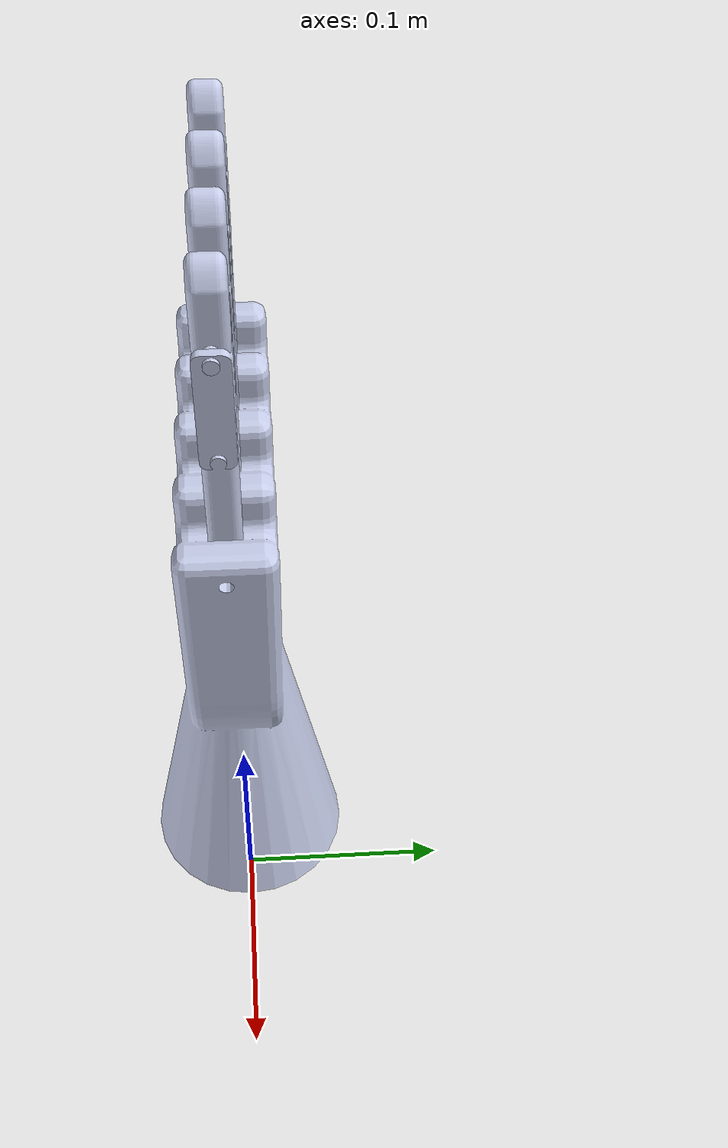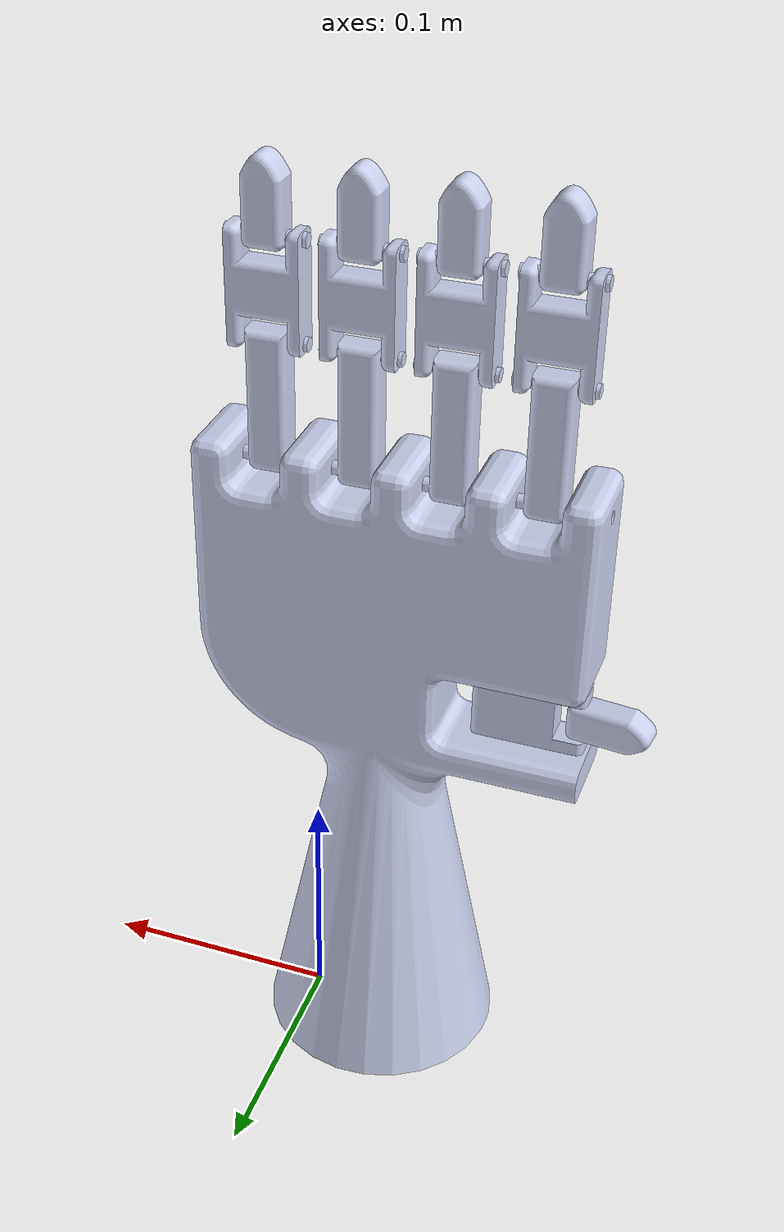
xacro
<?xml version="1.0"?>
<!-- Name your robot here -->
<robot name ="hand_bot" xmlns:xacro="http://wiki.ros.org/xacro">

<!-- Include your urdf files here -->
	<!-- Include Robot's urdf filepath -->
	<xacro:include filename="$(find hand_bot)/urdf/hand_bot.urdf"/>

<!--  Gazebo plugin for control here is already added for you -->
	<gazebo>
		<plugin name="gazebo_ros_control" filename="libgazebo_ros_control.so">
			<robotNamespace>/hand_bot</robotNamespace>
			<robotSimType>gazebo_ros_control/DefaultRobotHWSim</robotSimType>
			<legacyModeNS>true</legacyModeNS>
		</plugin>
	</gazebo>

</robot>

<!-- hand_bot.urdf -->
<robot
  name="hand_bot">
  <link name="dummy_link">
  <pos> 0 0 0 0 0 0 </pos>
  </link>
  <link
    name="base_link">
    <inertial>
      <origin
        xyz="-0.000703383166695187 1.43764231769206E-08 0.135753029524943"
        rpy="0 0 0" />
      <mass
        value="1.22844417241001" />
      <inertia
        ixx="0.00974290219860664"
        ixy="4.67625509381875E-10"
        ixz="0.000116051539380149"
        iyy="0.0108591675634407"
        iyz="-2.30309518757341E-10"
        izz="0.00173369930030835" />
    </inertial>
    <visual>
      <origin
        xyz="-0.03 0 0"
        rpy="0 0 0" />
      <geometry>
        <mesh
          filename="package://hand_bot/meshes/base_link.STL" />
      </geometry>
      <material
        name="">
        <color
          rgba="0.792156862745098 0.819607843137255 0.933333333333333 1" />
      </material>
    </visual>
    <collision>
      <origin
        xyz="0 0 0"
        rpy="0 0 0" />
      <geometry>
        <mesh
          filename="package://hand_bot/meshes/base_link.STL" />
      </geometry>
    </collision>
  </link>
  <joint name="dummy_link_joint" type="fixed">
  <parent link="dummy_link" />
  <child link="base_link" />
  </joint>
  <link
    name="thumb_lower">
    <inertial>
      <origin
        xyz="-0.0146717254719545 8.89402371266196E-05 0.034009"
        rpy="0 0 0" />
      <mass
        value="0.0141913225410551" />
      <inertia
        ixx="1.73105534034488E-06"
        ixy="1.06627125713534E-08"
        ixz="6.85563856724106E-22"
        iyy="3.48992902687173E-06"
        iyz="6.18276166292801E-23"
        izz="2.1183781527226E-06" />
    </inertial>
    <visual>
      <origin
        xyz="0 0 0"
        rpy="0 0 0" />
      <geometry>
        <mesh
          filename="package://hand_bot/meshes/thumb_lower.STL" />
      </geometry>
      <material
        name="">
        <color
          rgba="0.792156862745098 0.819607843137255 0.933333333333333 1" />
      </material>
    </visual>
    <collision>
      <origin
        xyz="0 0 0"
        rpy="0 0 0" />
      <geometry>
        <mesh
          filename="package://hand_bot/meshes/thumb_lower.STL" />
      </geometry>
    </collision>
  </link>
  <joint
    name="thumb_lower_joint"
    type="continuous">
    <origin
      xyz="-0.0697904945163514 0 0.144205013943543"
      rpy="0 0 0" />
    <parent
      link="base_link" />
    <child
      link="thumb_lower" />
    <axis
      xyz="0 0 1" />
  </joint>
  <link
    name="thumb_tip">
    <inertial>
      <origin
        xyz="-0.0108563056382985 0.00118581516066497 0.0154906157070203"
        rpy="0 0 0" />
      <mass
        value="0.00619150344597553" />
      <inertia
        ixx="2.34028685837351E-07"
        ixy="4.71131557974681E-08"
        ixz="-1.79641579500449E-09"
        iyy="6.60204648356565E-07"
        iyz="1.96731292775481E-10"
        izz="5.82123696956229E-07" />
    </inertial>
    <visual>
      <origin
        xyz="0 0 0"
        rpy="0 0 0" />
      <geometry>
        <mesh
          filename="package://hand_bot/meshes/thumb_tip.STL" />
      </geometry>
      <material
        name="">
        <color
          rgba="0.792156862745098 0.819607843137255 0.933333333333333 1" />
      </material>
    </visual>
    <collision>
      <origin
        xyz="0 0 0"
        rpy="0 0 0" />
      <geometry>
        <mesh
          filename="package://hand_bot/meshes/thumb_tip.STL" />
      </geometry>
    </collision>
  </link>
  <joint
    name="thumb_tip_joint"
    type="continuous">
    <origin
      xyz="-0.0387855356827445 0.000235118544666083 0.018499"
      rpy="0 0 0" />
    <parent
      link="thumb_lower" />
    <child
      link="thumb_tip" />
    <axis
      xyz="0 0 -1" />
  </joint>
  <link
    name="index_lower">
    <inertial>
      <origin
        xyz="0.0239088703056435 2.59556670254013E-09 0.015510005969888"
        rpy="0 0 0" />
      <mass
        value="0.0113540384293597" />
      <inertia
        ixx="4.43227782507445E-07"
        ixy="3.60087547476363E-13"
        ixz="1.28850285618581E-12"
        iyy="3.4209336950663E-06"
        iyz="2.74080827858553E-12"
        izz="3.24606186087563E-06" />
    </inertial>
    <visual>
      <origin
        xyz="0 0 0"
        rpy="0 0 0" />
      <geometry>
        <mesh
          filename="package://hand_bot/meshes/index_lower.STL" />
      </geometry>
      <material
        name="">
        <color
          rgba="0.792156862745098 0.819607843137255 0.933333333333333 1" />
      </material>
    </visual>
    <collision>
      <origin
        xyz="0 0 0"
        rpy="0 0 0" />
      <geometry>
        <mesh
          filename="package://hand_bot/meshes/index_lower.STL" />
      </geometry>
    </collision>
  </link>
  <joint
    name="index_lower_joint"
    type="continuous">
    <origin
      xyz="-0.0737440061993371 0 0.267773316384999"
      rpy="0 -1.5707963267949 0" />
    <parent
      link="base_link" />
    <child
      link="index_lower" />
    <axis
      xyz="0 0 -1" />
  </joint>
  <link
    name="index_middle">
    <inertial>
      <origin
        xyz="0.0193931241612039 6.93889390390723E-18 -0.0909720143523135"
        rpy="0 0 0" />
      <mass
        value="0.0099754284930005" />
      <inertia
        ixx="9.63331774115533E-07"
        ixy="-4.54052082283278E-13"
        ixz="1.65184323422484E-13"
        iyy="1.77529238382157E-06"
        iyz="-3.90739595474209E-23"
        izz="1.07733730138E-06" />
    </inertial>
    <visual>
      <origin
        xyz="0 0 0"
        rpy="0 0 0" />
      <geometry>
        <mesh
          filename="package://hand_bot/meshes/index_middle.STL" />
      </geometry>
      <material
        name="">
        <color
          rgba="0.792156862745098 0.819607843137255 0.933333333333333 1" />
      </material>
    </visual>
    <collision>
      <origin
        xyz="0 0 0"
        rpy="0 0 0" />
      <geometry>
        <mesh
          filename="package://hand_bot/meshes/index_middle.STL" />
      </geometry>
    </collision>
  </link>
  <joint
    name="index_middle_joint"
    type="continuous">
    <origin
      xyz="0.0476453307518057 0 0.106482"
      rpy="0 0 0" />
    <parent
      link="index_lower" />
    <child
      link="index_middle" />
    <axis
      xyz="0 0 -1" />
  </joint>
  <link
    name="index_tip">
    <inertial>
      <origin
        xyz="0.0109208761883658 2.65025172987987E-09 0.0154906154914554"
        rpy="0 0 0" />
      <mass
        value="0.00619150336790514" />
      <inertia
        ixx="2.2888252475664E-07"
        ixy="4.82972895855026E-13"
        ixz="1.80715409289673E-09"
        iyy="6.65350789864724E-07"
        iyz="-5.2069947345574E-13"
        izz="5.82123714231468E-07" />
    </inertial>
    <visual>
      <origin
        xyz="0 0 0"
        rpy="0 0 0" />
      <geometry>
        <mesh
          filename="package://hand_bot/meshes/index_tip.STL" />
      </geometry>
      <material
        name="">
        <color
          rgba="0.792156862745098 0.819607843137255 0.933333333333333 1" />
      </material>
    </visual>
    <collision>
      <origin
        xyz="0 0 0"
        rpy="0 0 0" />
      <geometry>
        <mesh
          filename="package://hand_bot/meshes/index_tip.STL" />
      </geometry>
    </collision>
  </link>
  <joint
    name="index_tip_joint"
    type="continuous">
    <origin
      xyz="0.0387862483224079 0 -0.106482"
      rpy="0 0 0" />
    <parent
      link="index_middle" />
    <child
      link="index_tip" />
    <axis
      xyz="0 0 -1" />
  </joint>
  <link
    name="middle_lower">
    <inertial>
      <origin
        xyz="0.0239088703056435 2.61630045059191E-09 0.015510005969888"
        rpy="0 0 0" />
      <mass
        value="0.0113540384293597" />
      <inertia
        ixx="4.43227782507465E-07"
        ixy="3.57505283708545E-13"
        ixz="1.28850285366496E-12"
        iyy="3.42093369506633E-06"
        iyz="2.74080828144101E-12"
        izz="3.24606186087563E-06" />
    </inertial>
    <visual>
      <origin
        xyz="0 0 0"
        rpy="0 0 0" />
      <geometry>
        <mesh
          filename="package://hand_bot/meshes/middle_lower.STL" />
      </geometry>
      <material
        name="">
        <color
          rgba="0.792156862745098 0.819607843137255 0.933333333333333 1" />
      </material>
    </visual>
    <collision>
      <origin
        xyz="0 0 0"
        rpy="0 0 0" />
      <geometry>
        <mesh
          filename="package://hand_bot/meshes/middle_lower.STL" />
      </geometry>
    </collision>
  </link>
  <joint
    name="middle_lower_joint"
    type="continuous">
    <origin
      xyz="-0.0382500061993371 0 0.267773316384999"
      rpy="0 -1.5707963267949 0" />
    <parent
      link="base_link" />
    <child
      link="middle_lower" />
    <axis
      xyz="0 0 -1" />
  </joint>
  <link
    name="middle_middle">
    <inertial>
      <origin
        xyz="0.0193931241612039 4.13179872260638E-11 0.0155099856476866"
        rpy="0 0 0" />
      <mass
        value="0.00997542849300048" />
      <inertia
        ixx="9.63331774115532E-07"
        ixy="-4.54052082609228E-13"
        ixz="1.65184323690672E-13"
        iyy="1.77529238382157E-06"
        iyz="-6.5535389975188E-24"
        izz="1.07733730138E-06" />
    </inertial>
    <visual>
      <origin
        xyz="0 0 0"
        rpy="0 0 0" />
      <geometry>
        <mesh
          filename="package://hand_bot/meshes/middle_middle.STL" />
      </geometry>
      <material
        name="">
        <color
          rgba="0.792156862745098 0.819607843137255 0.933333333333333 1" />
      </material>
    </visual>
    <collision>
      <origin
        xyz="0 0 0"
        rpy="0 0 0" />
      <geometry>
        <mesh
          filename="package://hand_bot/meshes/middle_middle.STL" />
      </geometry>
    </collision>
  </link>
  <joint
    name="middle_middle_joint"
    type="continuous">
    <origin
      xyz="0.0476453307518057 0 0"
      rpy="0 0 0" />
    <parent
      link="middle_lower" />
    <child
      link="middle_middle" />
    <axis
      xyz="0 0 -1" />
  </joint>
  <link
    name="middle_tip">
    <inertial>
      <origin
        xyz="0.0109208761883657 2.69156971363649E-09 0.0154906154914554"
        rpy="0 0 0" />
      <mass
        value="0.00619150336790513" />
      <inertia
        ixx="2.2888252475664E-07"
        ixy="4.82972895735831E-13"
        ixz="1.80715409289735E-09"
        iyy="6.65350789864723E-07"
        iyz="-5.20699473353211E-13"
        izz="5.82123714231467E-07" />
    </inertial>
    <visual>
      <origin
        xyz="0 0 0"
        rpy="0 0 0" />
      <geometry>
        <mesh
          filename="package://hand_bot/meshes/middle_tip.STL" />
      </geometry>
      <material
        name="">
        <color
          rgba="0.792156862745098 0.819607843137255 0.933333333333333 1" />
      </material>
    </visual>
    <collision>
      <origin
        xyz="0 0 0"
        rpy="0 0 0" />
      <geometry>
        <mesh
          filename="package://hand_bot/meshes/middle_tip.STL" />
      </geometry>
    </collision>
  </link>
  <joint
    name="middle_tip_joint"
    type="continuous">
    <origin
      xyz="0.038786248322408 0 0"
      rpy="0 0 0" />
    <parent
      link="middle_middle" />
    <child
      link="middle_tip" />
    <axis
      xyz="0 0 -1" />
  </joint>
  <link
    name="ring_lower">
    <inertial>
      <origin
        xyz="0.0239088703056435 2.59265503163575E-09 0.0155100059698881"
        rpy="0 0 0" />
      <mass
        value="0.0113540384293597" />
      <inertia
        ixx="4.43227782507485E-07"
        ixy="3.60450178164727E-13"
        ixz="1.28850285652171E-12"
        iyy="3.42093369506635E-06"
        iyz="2.74080828173263E-12"
        izz="3.24606186087564E-06" />
    </inertial>
    <visual>
      <origin
        xyz="0 0 0"
        rpy="0 0 0" />
      <geometry>
        <mesh
          filename="package://hand_bot/meshes/ring_lower.STL" />
      </geometry>
      <material
        name="">
        <color
          rgba="0.792156862745098 0.819607843137255 0.933333333333333 1" />
      </material>
    </visual>
    <collision>
      <origin
        xyz="0 0 0"
        rpy="0 0 0" />
      <geometry>
        <mesh
          filename="package://hand_bot/meshes/ring_lower.STL" />
      </geometry>
    </collision>
  </link>
  <joint
    name="ring_lower_joint"
    type="continuous">
    <origin
      xyz="-0.00275600619933707 0 0.267773316384999"
      rpy="0 -1.5707963267949 0" />
    <parent
      link="base_link" />
    <child
      link="ring_lower" />
    <axis
      xyz="0 0 -1" />
  </joint>
  <link
    name="ring_middle">
    <inertial>
      <origin
        xyz="0.019393124161204 -5.80234471581065E-12 0.0155099856476866"
        rpy="0 0 0" />
      <mass
        value="0.00997542849300049" />
      <inertia
        ixx="9.63331774115532E-07"
        ixy="-4.540520828448E-13"
        ixz="1.65184323273074E-13"
        iyy="1.77529238382157E-06"
        iyz="1.02337713131639E-22"
        izz="1.07733730138E-06" />
    </inertial>
    <visual>
      <origin
        xyz="0 0 0"
        rpy="0 0 0" />
      <geometry>
        <mesh
          filename="package://hand_bot/meshes/ring_middle.STL" />
      </geometry>
      <material
        name="">
        <color
          rgba="0.792156862745098 0.819607843137255 0.933333333333333 1" />
      </material>
    </visual>
    <collision>
      <origin
        xyz="0 0 0"
        rpy="0 0 0" />
      <geometry>
        <mesh
          filename="package://hand_bot/meshes/ring_middle.STL" />
      </geometry>
    </collision>
  </link>
  <joint
    name="ring_middle_joint"
    type="continuous">
    <origin
      xyz="0.0476453307518057 0 0"
      rpy="0 0 0" />
    <parent
      link="ring_lower" />
    <child
      link="ring_middle" />
    <axis
      xyz="0 0 -1" />
  </joint>
  <link
    name="ring_tip">
    <inertial>
      <origin
        xyz="0.0109208761883658 2.6444493955724E-09 0.0154906154914554"
        rpy="0 0 0" />
      <mass
        value="0.00619150336790517" />
      <inertia
        ixx="2.28882524756641E-07"
        ixy="4.82972896413741E-13"
        ixz="1.80715409289713E-09"
        iyy="6.65350789864727E-07"
        iyz="-5.20699473423045E-13"
        izz="5.82123714231471E-07" />
    </inertial>
    <visual>
      <origin
        xyz="0 0 0"
        rpy="0 0 0" />
      <geometry>
        <mesh
          filename="package://hand_bot/meshes/ring_tip.STL" />
      </geometry>
      <material
        name="">
        <color
          rgba="0.792156862745098 0.819607843137255 0.933333333333333 1" />
      </material>
    </visual>
    <collision>
      <origin
        xyz="0 0 0"
        rpy="0 0 0" />
      <geometry>
        <mesh
          filename="package://hand_bot/meshes/ring_tip.STL" />
      </geometry>
    </collision>
  </link>
  <joint
    name="ring_tip_joint"
    type="continuous">
    <origin
      xyz="0.0387862483224079 0 0"
      rpy="0 0 0" />
    <parent
      link="ring_middle" />
    <child
      link="ring_tip" />
    <axis
      xyz="0 0 -1" />
  </joint>
  <link
    name="little_lower">
    <inertial>
      <origin
        xyz="0.0239088683918271 1.99144321866296E-09 0.0155100055183267"
        rpy="0 0 0" />
      <mass
        value="0.0113540369936257" />
      <inertia
        ixx="4.43227714055476E-07"
        ixy="5.07497838099468E-13"
        ixz="1.3999697583594E-12"
        iyy="3.42093314705532E-06"
        iyz="2.78183403666697E-12"
        izz="3.2460613149603E-06" />
    </inertial>
    <visual>
      <origin
        xyz="0 0 0"
        rpy="0 0 0" />
      <geometry>
        <mesh
          filename="package://hand_bot/meshes/little_lower.STL" />
      </geometry>
      <material
        name="">
        <color
          rgba="0.792156862745098 0.819607843137255 0.933333333333333 1" />
      </material>
    </visual>
    <collision>
      <origin
        xyz="0 0 0"
        rpy="0 0 0" />
      <geometry>
        <mesh
          filename="package://hand_bot/meshes/little_lower.STL" />
      </geometry>
    </collision>
  </link>
  <joint
    name="little_lower_joint"
    type="continuous">
    <origin
      xyz="0.0327379938006629 0 0.267773316384999"
      rpy="0 -1.5707963267949 0" />
    <parent
      link="base_link" />
    <child
      link="little_lower" />
    <axis
      xyz="0 0 1" />
  </joint>
  <link
    name="little_middle">
    <inertial>
      <origin
        xyz="0.0193931241612039 4.71054306672158E-11 0.0155099856476866"
        rpy="0 0 0" />
      <mass
        value="0.0099754284930005" />
      <inertia
        ixx="9.63331774115533E-07"
        ixy="-4.54052082563687E-13"
        ixz="1.65184323153488E-13"
        iyy="1.77529238382157E-06"
        iyz="2.41833314434403E-23"
        izz="1.07733730138E-06" />
    </inertial>
    <visual>
      <origin
        xyz="0 0 0"
        rpy="0 0 0" />
      <geometry>
        <mesh
          filename="package://hand_bot/meshes/little_middle.STL" />
      </geometry>
      <material
        name="">
        <color
          rgba="0.792156862745098 0.819607843137255 0.933333333333333 1" />
      </material>
    </visual>
    <collision>
      <origin
        xyz="0 0 0"
        rpy="0 0 0" />
      <geometry>
        <mesh
          filename="package://hand_bot/meshes/little_middle.STL" />
      </geometry>
    </collision>
  </link>
  <joint
    name="little_middle_joint"
    type="continuous">
    <origin
      xyz="0.0476453307518057 0 0"
      rpy="0 0 0" />
    <parent
      link="little_lower" />
    <child
      link="little_middle" />
    <axis
      xyz="0 0 -1" />
  </joint>
  <link
    name="little_tip">
    <inertial>
      <origin
        xyz="0.0109208761883658 2.65025171947153E-09 0.0154906154914554"
        rpy="0 0 0" />
      <mass
        value="0.00619150336790515" />
      <inertia
        ixx="2.28882524756641E-07"
        ixy="4.82972896796076E-13"
        ixz="1.80715409289637E-09"
        iyy="6.65350789864726E-07"
        iyz="-5.20699473638216E-13"
        izz="5.82123714231469E-07" />
    </inertial>
    <visual>
      <origin
        xyz="0 0 0"
        rpy="0 0 0" />
      <geometry>
        <mesh
          filename="package://hand_bot/meshes/little_tip.STL" />
      </geometry>
      <material
        name="">
        <color
          rgba="0.792156862745098 0.819607843137255 0.933333333333333 1" />
      </material>
    </visual>
    <collision>
      <origin
        xyz="0 0 0"
        rpy="0 0 0" />
      <geometry>
        <mesh
          filename="package://hand_bot/meshes/little_tip.STL" />
      </geometry>
    </collision>
  </link>
  <joint
    name="little_tip_joint"
    type="continuous">
    <origin
      xyz="0.0387862483224079 0 0"
      rpy="0 0 0" />
    <parent
      link="little_middle" />
    <child
      link="little_tip" />
    <axis
      xyz="0 0 -1" />
  </joint>

   <transmission name="index_tip_trans">
  	<type>transmission_interface/SimpleTransmission</type>
  	<joint name="index_tip_joint">
    		<hardwareInterface>hardware_interface/PositionJointInterface</hardwareInterface>
  	</joint>
  	<actuator name="index_tip_joint_motor">
    		<mechanicalReduction>50</mechanicalReduction>
    		<hardwareInterface>hardware_interface/PositionJointInterface</hardwareInterface>
  	</actuator>
   </transmission>

   <transmission name="index_middle_trans">
  	<type>transmission_interface/SimpleTransmission</type>
  	<joint name="index_middle_joint">
    		<hardwareInterface>hardware_interface/PositionJointInterface</hardwareInterface>
  	</joint>
  	<actuator name="index_middle_joint_motor">
    		<mechanicalReduction>50</mechanicalReduction>
    		<hardwareInterface>hardware_interface/PositionJointInterface</hardwareInterface>
  	</actuator>
   </transmission>

   <transmission name="index_lower_trans">
  	<type>transmission_interface/SimpleTransmission</type>
  	<joint name="index_lower_joint">
    		<hardwareInterface>hardware_interface/PositionJointInterface</hardwareInterface>
  	</joint>
  	<actuator name="index_lower_joint_motor">
    		<mechanicalReduction>50</mechanicalReduction>
    		<hardwareInterface>hardware_interface/PositionJointInterface</hardwareInterface>
  	</actuator>
   </transmission>

   <transmission name="middle_tip_trans">
  	<type>transmission_interface/SimpleTransmission</type>
  	<joint name="middle_tip_joint">
    		<hardwareInterface>hardware_interface/PositionJointInterface</hardwareInterface>
  	</joint>
  	<actuator name="middle_tip_joint_motor">
    		<mechanicalReduction>50</mechanicalReduction>
    		<hardwareInterface>hardware_interface/PositionJointInterface</hardwareInterface>
  	</actuator>
   </transmission>

   <transmission name="middle_middle_trans">
  	<type>transmission_interface/SimpleTransmission</type>
  	<joint name="middle_middle_joint">
    		<hardwareInterface>hardware_interface/PositionJointInterface</hardwareInterface>
  	</joint>
  	<actuator name="middle_middle_joint_motor">
    		<mechanicalReduction>50</mechanicalReduction>
    		<hardwareInterface>hardware_interface/PositionJointInterface</hardwareInterface>
  	</actuator>
   </transmission>

   <transmission name="middle_lower_trans">
  	<type>transmission_interface/SimpleTransmission</type>
  	<joint name="middle_lower_joint">
    		<hardwareInterface>hardware_interface/PositionJointInterface</hardwareInterface>
  	</joint>
  	<actuator name="middle_lower_joint_motor">
    		<mechanicalReduction>50</mechanicalReduction>
    		<hardwareInterface>hardware_interface/PositionJointInterface</hardwareInterface>
  	</actuator>
   </transmission>

   <transmission name="ring_tip_trans">
  	<type>transmission_interface/SimpleTransmission</type>
  	<joint name="ring_tip_joint">
    		<hardwareInterface>hardware_interface/PositionJointInterface</hardwareInterface>
  	</joint>
  	<actuator name="ring_tip_joint_motor">
    		<mechanicalReduction>50</mechanicalReduction>
    		<hardwareInterface>hardware_interface/PositionJointInterface</hardwareInterface>
  	</actuator>
   </transmission>

   <transmission name="ring_middle_trans">
  	<type>transmission_interface/SimpleTransmission</type>
  	<joint name="ring_middle_joint">
    		<hardwareInterface>hardware_interface/PositionJointInterface</hardwareInterface>
  	</joint>
  	<actuator name="ring_middle_joint_motor">
    		<mechanicalReduction>50</mechanicalReduction>
    		<hardwareInterface>hardware_interface/PositionJointInterface</hardwareInterface>
  	</actuator>
   </transmission>

   <transmission name="ring_lower_trans">
  	<type>transmission_interface/SimpleTransmission</type>
  	<joint name="ring_lower_joint">
    		<hardwareInterface>hardware_interface/PositionJointInterface</hardwareInterface>
  	</joint>
  	<actuator name="ring_lower_joint_motor">
    		<mechanicalReduction>50</mechanicalReduction>
    		<hardwareInterface>hardware_interface/PositionJointInterface</hardwareInterface>
  	</actuator>
   </transmission>

   <transmission name="little_tip_trans">
  	<type>transmission_interface/SimpleTransmission</type>
  	<joint name="little_tip_joint">
    		<hardwareInterface>hardware_interface/PositionJointInterface</hardwareInterface>
  	</joint>
  	<actuator name="little_tip_joint_motor">
    		<mechanicalReduction>50</mechanicalReduction>
    		<hardwareInterface>hardware_interface/PositionJointInterface</hardwareInterface>
  	</actuator>
   </transmission>

   <transmission name="little_middle_trans">
  	<type>transmission_interface/SimpleTransmission</type>
  	<joint name="little_middle_joint">
    		<hardwareInterface>hardware_interface/PositionJointInterface</hardwareInterface>
  	</joint>
  	<actuator name="little_middle_joint_motor">
    		<mechanicalReduction>50</mechanicalReduction>
    		<hardwareInterface>hardware_interface/PositionJointInterface</hardwareInterface>
  	</actuator>
   </transmission>

   <transmission name="little_lower_trans">
  	<type>transmission_interface/SimpleTransmission</type>
  	<joint name="little_lower_joint">
    		<hardwareInterface>hardware_interface/PositionJointInterface</hardwareInterface>
  	</joint>
  	<actuator name="little_lower_joint_motor">
    		<mechanicalReduction>50</mechanicalReduction>
    		<hardwareInterface>hardware_interface/PositionJointInterface</hardwareInterface>
  	</actuator>
   </transmission>

   <transmission name="thumb_lower_trans">
  	<type>transmission_interface/SimpleTransmission</type>
  	<joint name="thumb_lower_joint">
    		<hardwareInterface>hardware_interface/PositionJointInterface</hardwareInterface>
  	</joint>
  	<actuator name="thumb_lower_joint_motor">
    		<mechanicalReduction>50</mechanicalReduction>
    		<hardwareInterface>hardware_interface/PositionJointInterface</hardwareInterface>
  	</actuator>
   </transmission>

   <transmission name="thumb_tip_trans">
  	<type>transmission_interface/SimpleTransmission</type>
  	<joint name="thumb_tip_joint">
    		<hardwareInterface>hardware_interface/PositionJointInterface</hardwareInterface>
  	</joint>
  	<actuator name="thumb_tip_joint_motor">
    		<mechanicalReduction>50</mechanicalReduction>
    		<hardwareInterface>hardware_interface/PositionJointInterface</hardwareInterface>
  	</actuator>
    </transmission>
</robot>
